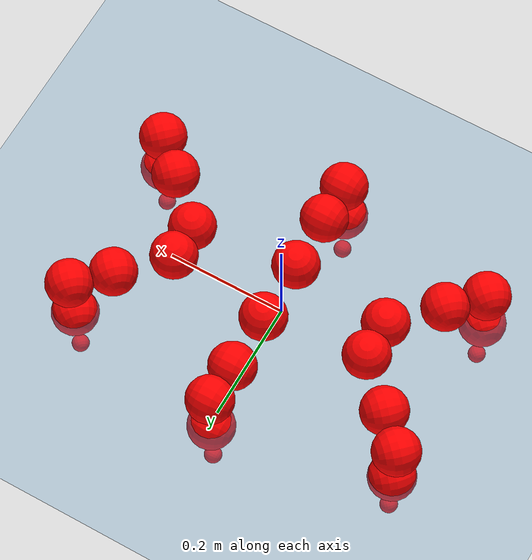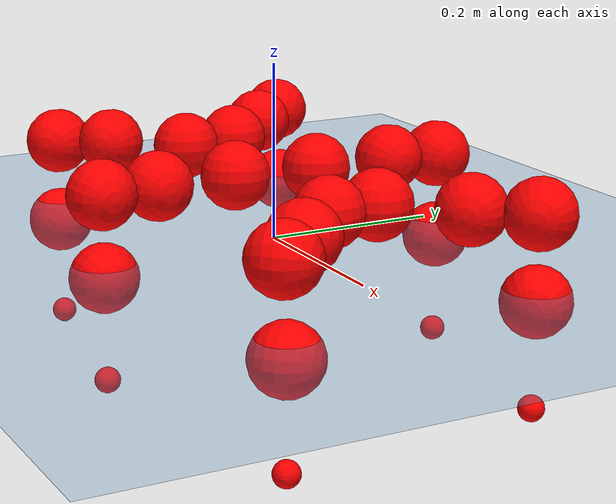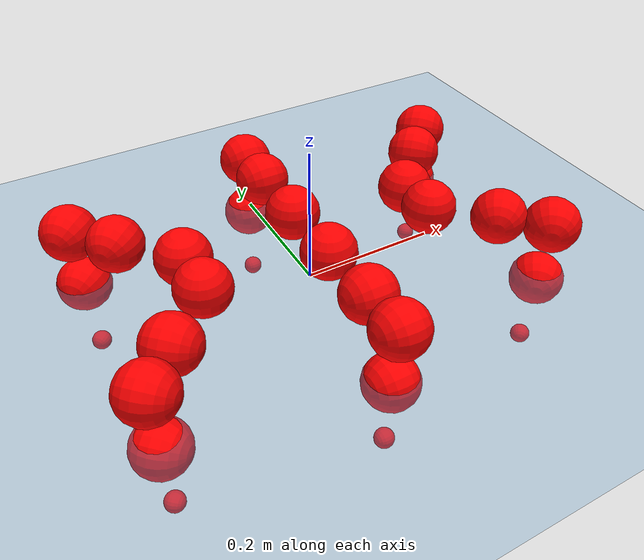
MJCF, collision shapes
<mujoco model="Golem">
  <compiler angle="radian" assetdir="assets" balanceinertia="true" inertiafromgeom="false"/>

  <option timestep="0.005" density="1.2" viscosity="2e-05"/>

  <size nkey="1"/>

  <visual>
    <quality shadowsize="8192"/>
    <map shadowclip="0.5"/>
  </visual>

  <default>
    <default class="/">
      <joint armature="0.01" damping="0.01" frictionloss="0.01"/>
      <geom contype="0" conaffinity="0" group="1" solref="-1000 -80"/>
      <site size="0.01 0.005 0.005" group="5"/>
      <general forcelimited="true" biastype="affine" gainprm="25" biasprm="0 -25 -0.5"/>
      <default class="visual">
        <geom type="mesh" group="2"/>
      </default>
      <default class="collision">
        <geom group="3"/>
      </default>
      <default class="foot">
        <geom size="0.01 0 0" condim="6" group="4" priority="1" solimp="0.015 1 0.01"/>
      </default>
      <default class="reward_collision_sphere">
        <geom group="5" rgba="1 0 0 1"/>
      </default>
    </default>
  </default>

  <asset>
    <texture type="skybox" colorspace="auto" name="//unnamed_texture_0" builtin="gradient" rgb1="0.95 0.95 0.95" rgb2="0.95 0.95 0.95" width="100" height="600"/>
    <texture type="2d" colorspace="auto" name="texplane" builtin="checker" rgb1="0.345 0.575 0.748" rgb2="0.345 0.575 0.748" markrgb="1 1 1" width="512" height="512"/>
    <material name="MatPlane" class="/" texture="texplane" texuniform="true" texrepeat="2 2" specular="0.9"/>
    <mesh name="body" class="/" file="body.stl" scale="0.001 0.001 0.001"/>
    <mesh name="coxa" class="/" file="coxa.stl" scale="0.001 0.001 0.001"/>
    <mesh name="femur" class="/" file="femur.stl" scale="0.001 0.001 0.001"/>
    <mesh name="tibia" class="/" file="tibia.stl" scale="0.001 0.001 0.001"/>
    <mesh name="tarsus" class="/" file="tarsus.stl" scale="0.001 0.001 0.001"/>
  </asset>

  <worldbody>
    <geom name="floor" class="/" size="100 100 0.125" type="plane" group="0" material="MatPlane"/>
    <light name="toplight_shadow" class="/" pos="0 0 5" dir="0.0990148 0.0990148 -0.990148" type="directional" ambient="0.04 0.04 0.04" diffuse="0.55 0.55 0.55" specular="0.12 0.12 0.12"/>
    <light name="toplight_fill" class="/" pos="0 0 5" dir="0.0990148 0.0990148 -0.990148" type="directional" castshadow="false" ambient="0.04 0.04 0.04" diffuse="0.3 0.3 0.3" specular="0.08 0.08 0.08"/>
    <body name="trunk" pos="0.00276822 -0.000198582 0.00222652" quat="1 0.000183243 -2.68856e-05 0.000439572">
      <inertial pos="-0.00215051 -0.00230608 0.000539398" quat="1 -0.000211311 4.23156e-05 -0.0006927" mass="3.45856" diaginertia="0.0156525 0.00105096 0.0233656"/>
      <joint name="//unnamed_joint_0" type="free"/>
      <geom name="//unnamed_geom_1" class="/" pos="0 0 0.0754776" quat="1 0 0 0" type="mesh" rgba="0.9 0.9 0.9 1" mesh="body"/>
      <site name="imu" class="/" pos="0.138915 -0.00974442 0.114628" size="0.00971754"/>
      <camera name="track" class="/" pos="0 -1.27532 0" quat="0.707107 0.707107 0 0" mode="trackcom"/>
      <camera name="ego_camera" class="/" pos="0.142774 0 0.117934" quat="-0.5 -0.5 0.5 0.5"/>
      <body name="coxa_RR" pos="-0.193697 -0.0544397 0.0743799" quat="0.382697 8.78794e-05 4.10811e-05 -0.923874">
        <inertial pos="-0.000144785 0.00127042 -0.000738462" quat="0.99992 0.0113518 -0.00423793 0.00350593" mass="0.187775" diaginertia="0.016361 0.00103017 0.0228189"/>
        <joint name="coxa_joint_RR" class="/" pos="0 0 0" axis="0.000262953 0.000136675 -1" stiffness="0.00383305" range="-3.11417 3.14833" armature="0.00977195" damping="0.0149112" frictionloss="0.00908736"/>
        <geom name="//unnamed_geom_2" class="/" type="mesh" rgba="0.2 0.2 0.2 1" mesh="coxa"/>
        <geom name="//unnamed_geom_3" class="reward_collision_sphere" size="0.0388701" pos="-0.0329479 0 0"/>
        <body name="femur_RR" pos="0.0636871 0.0018073 -0.000956955" quat="0.500013 -0.499969 0.499966 0.500052">
          <inertial pos="-0.00121663 0.00133821 -0.0021143" quat="0.999999 0.000225601 0.000288879 0.00139767" mass="0.183667" diaginertia="0.0159803 0.00105043 0.022768"/>
          <joint name="femur_joint_RR" class="/" pos="0 0 0" axis="0.00188066 -0.00097516 -0.999998" range="-3.17728 3.18565" armature="0.00887839" damping="0.00502967" frictionloss="0.00957784"/>
          <geom name="//unnamed_geom_4" class="/" type="mesh" rgba="0.9 0.9 0.9 1" mesh="femur"/>
          <geom name="//unnamed_geom_5" class="reward_collision_sphere" size="0.0388701"/>
          <body name="tibia_RR" pos="0.00357266 -0.068426 0.00247528" quat="-0.00013116 1 -0.000269635 -0.000281482">
            <inertial pos="0.00245461 -0.00118863 0.00207531" quat="0.999927 0.00594297 0.0104605 -0.00106997" mass="0.186547" diaginertia="0.0166733 0.0011017 0.0230593"/>
            <joint name="tibia_joint_RR" class="/" pos="0 0 0" axis="0.00288864 0.00769616 0.999966" range="-3.1924 3.18285" armature="0.0087772" damping="0.0173522" frictionloss="0.0104101"/>
            <geom name="//unnamed_geom_6" class="/" type="mesh" rgba="0.2 0.2 0.2 1" mesh="tibia"/>
            <geom name="//unnamed_geom_7" class="reward_collision_sphere" size="0.0388701"/>
            <body name="tarsus_RR" pos="0.0995726 0.000149094 -0.00087861" quat="1 -0.000241227 -1.47315e-05 -2.5885e-05">
              <inertial pos="0.0678157 -0.00196212 -0.000655823" quat="0.510927 0.498949 0.493992 0.495958" mass="0.179265" diaginertia="0.0154422 0.00105735 0.0228077"/>
              <joint name="tarsus_joint_RR" class="/" pos="0 0 0" axis="0.00308313 -0.00267052 0.999992" range="-3.16014 3.12908" armature="0.0110698" damping="0.0411539" frictionloss="0.0109472"/>
              <geom name="//unnamed_geom_8" class="/" type="mesh" rgba="0.9 0.9 0.9 1" mesh="tarsus"/>
              <geom name="foot_1" class="foot" size="0.0105593" pos="0.123005 0 0" quat="0 -0.707107 0 0.707107"/>
              <geom name="//unnamed_geom_10" class="reward_collision_sphere" size="0.0388701"/>
              <geom name="//unnamed_geom_11" class="reward_collision_sphere" size="0.0145763" pos="0.118063 0 0"/>
              <site name="foot_1" class="foot" pos="0.123005 0 0" quat="0 -0.707107 0 0.707107" size="0.00971754"/>
            </body>
          </body>
        </body>
      </body>
      <body name="coxa_RM" pos="-0.00149635 -0.0816882 0.0769634" quat="0.707189 0.000178068 9.76064e-06 -0.707024">
        <inertial pos="-0.00062846 0.00278867 0.00302637" quat="0.999992 -0.000961605 0.00124116 0.00364286" mass="0.184614" diaginertia="0.0164754 0.00109547 0.0234399"/>
        <joint name="coxa_joint_RM" class="/" pos="0 0 0" axis="0.000251407 0.0101323 -0.999949" stiffness="0.0069209" range="-3.17933 3.08668" armature="0.0102289" damping="0.031058" frictionloss="0.010599"/>
        <geom name="//unnamed_geom_12" class="/" type="mesh" rgba="0.2 0.2 0.2 1" mesh="coxa"/>
        <geom name="//unnamed_geom_13" class="reward_collision_sphere" size="0.0388701" pos="-0.0329479 0 0"/>
        <body name="femur_RM" pos="0.0605829 0.00166749 -0.000551036" quat="0.499719 -0.500302 0.500455 0.499522">
          <inertial pos="0.000741576 -0.00263151 0.00120117" quat="0.999934 -0.0106419 -0.000138305 -0.00441682" mass="0.181866" diaginertia="0.0159136 0.00101087 0.0227707"/>
          <joint name="femur_joint_RM" class="/" pos="0 0 0" axis="0.00916209 0.00785226 -0.999927" range="-3.09291 3.08863" armature="0.00936114" damping="0.00383448" frictionloss="0.0100511"/>
          <geom name="//unnamed_geom_14" class="/" type="mesh" rgba="0.9 0.9 0.9 1" mesh="femur"/>
          <geom name="//unnamed_geom_15" class="reward_collision_sphere" size="0.0388701"/>
          <body name="tibia_RM" pos="0.00173383 -0.0659082 0.000639174" quat="0.000185148 1 -0.000169994 -4.87869e-05">
            <inertial pos="0.00124522 0.000375689 0.00290499" quat="0.999977 0.0053827 -0.00329489 0.00255959" mass="0.181129" diaginertia="0.016106 0.00105134 0.0230993"/>
            <joint name="tibia_joint_RM" class="/" pos="0 0 0" axis="-0.00091495 -0.00264456 0.999996" range="-3.14869 3.19227" armature="0.0110358" damping="0.00454625" frictionloss="0.010832"/>
            <geom name="//unnamed_geom_16" class="/" type="mesh" rgba="0.2 0.2 0.2 1" mesh="tibia"/>
            <geom name="//unnamed_geom_17" class="reward_collision_sphere" size="0.0388701"/>
            <body name="tarsus_RM" pos="0.0937604 -0.00136519 0.00307273" quat="0.999999 -0.000311087 -0.000579662 -0.000950101">
              <inertial pos="0.0663229 0.00128614 -0.00126651" quat="0.500059 0.500702 0.501266 0.497967" mass="0.187442" diaginertia="0.0169222 0.00105705 0.0232448"/>
              <joint name="tarsus_joint_RM" class="/" pos="0 0 0" axis="-0.000637352 0.00961253 0.999954" range="-3.14068 3.15641" armature="0.00984711" damping="0.00806706" frictionloss="0.0100894"/>
              <geom name="//unnamed_geom_18" class="/" type="mesh" rgba="0.9 0.9 0.9 1" mesh="tarsus"/>
              <geom name="foot_2" class="foot" size="0.00936829" pos="0.123005 0 0" quat="0 -0.707107 0 0.707107"/>
              <geom name="//unnamed_geom_20" class="reward_collision_sphere" size="0.0388701"/>
              <geom name="//unnamed_geom_21" class="reward_collision_sphere" size="0.0145763" pos="0.118063 0 0"/>
              <site name="foot_2" class="foot" pos="0.123005 0 0" quat="0 -0.707107 0 0.707107" size="0.00971754"/>
            </body>
          </body>
        </body>
      </body>
      <body name="coxa_RF" pos="0.197261 -0.0516635 0.0743546" quat="0.923988 0.000305492 0.000204001 -0.382422">
        <inertial pos="0.000476807 0.00058912 0.000604709" quat="0.999985 0.00535386 0.000940276 -5.35057e-05" mass="0.185377" diaginertia="0.0157722 0.00107916 0.0227695"/>
        <joint name="coxa_joint_RF" class="/" pos="0 0 0" axis="0.000348441 0.000490071 -1" range="-3.18165 3.12106" armature="0.00833571" damping="0.0224556" frictionloss="0.00955468"/>
        <geom name="//unnamed_geom_22" class="/" type="mesh" rgba="0.2 0.2 0.2 1" mesh="coxa"/>
        <geom name="//unnamed_geom_23" class="reward_collision_sphere" size="0.0388701" pos="-0.0329479 0 0"/>
        <body name="femur_RF" pos="0.0642755 0.00216103 0.00133013" quat="0.500061 -0.499937 0.500106 0.499896">
          <inertial pos="5.57797e-05 -0.00218891 -0.0010079" quat="0.999918 0.00930853 -0.00469765 -0.00739291" mass="0.177448" diaginertia="0.0152363 0.00101728 0.0230914"/>
          <joint name="femur_joint_RF" class="/" pos="0 0 0" axis="0.00157724 -0.00342889 -0.999993" range="-3.13399 3.15465" armature="0.0104843" damping="0.00026325" frictionloss="0.0110601"/>
          <geom name="//unnamed_geom_24" class="/" type="mesh" rgba="0.9 0.9 0.9 1" mesh="femur"/>
          <geom name="//unnamed_geom_25" class="reward_collision_sphere" size="0.0388701"/>
          <body name="tibia_RF" pos="0.00113982 -0.0721795 0.00197714" quat="3.20157e-05 1 -4.67508e-05 2.7928e-05">
            <inertial pos="0.00261993 0.00204682 -0.00115381" quat="0.999917 0.0128262 -0.000623563 0.000978662" mass="0.182497" diaginertia="0.0154876 0.00101692 0.0229401"/>
            <joint name="tibia_joint_RF" class="/" pos="0 0 0" axis="-0.00126744 -0.00304283 0.999995" range="-3.12836 3.09594" armature="0.0109157" damping="0" frictionloss="0.00929335"/>
            <geom name="//unnamed_geom_26" class="/" type="mesh" rgba="0.2 0.2 0.2 1" mesh="tibia"/>
            <geom name="//unnamed_geom_27" class="reward_collision_sphere" size="0.0388701"/>
            <body name="tarsus_RF" pos="0.0994471 -0.000620475 -0.0024763" quat="1 -0.000102293 9.60094e-05 -0.000356228">
              <inertial pos="0.067523 0.000977502 -0.00218306" quat="0.50519 0.494189 0.503738 0.496798" mass="0.181956" diaginertia="0.0159459 0.0010795 0.0230058"/>
              <joint name="tarsus_joint_RF" class="/" pos="0 0 0" axis="-0.00364031 0.00309249 0.999989" stiffness="0.0169884" range="-3.15595 3.126" armature="0.00859036" damping="0.00981783" frictionloss="0.00956354"/>
              <geom name="//unnamed_geom_28" class="/" type="mesh" rgba="0.9 0.9 0.9 1" mesh="tarsus"/>
              <geom name="foot_3" class="foot" size="0.00870776" pos="0.123005 0 0" quat="0 -0.707107 0 0.707107"/>
              <geom name="//unnamed_geom_30" class="reward_collision_sphere" size="0.0388701"/>
              <geom name="//unnamed_geom_31" class="reward_collision_sphere" size="0.0145763" pos="0.118063 0 0"/>
              <site name="foot_3" class="foot" pos="0.123005 0 0" quat="0 -0.707107 0 0.707107" size="0.00971754"/>
            </body>
          </body>
        </body>
      </body>
      <body name="coxa_LR" pos="-0.194771 0.0553537 0.0776013" quat="0.383218 0.000923557 -0.000751661 0.923657">
        <inertial pos="-0.00248376 0.00123526 0.00381237" quat="0.999989 -0.00360641 0.002898 -0.000849032" mass="0.188144" diaginertia="0.0165035 0.00106076 0.022898"/>
        <joint name="coxa_joint_LR" class="/" pos="0 0 0" axis="0.00797499 0.0115642 -0.999901" range="-3.19153 3.12045" armature="0.00987211" damping="0.0196943" frictionloss="0.00903842"/>
        <geom name="//unnamed_geom_32" class="/" type="mesh" rgba="0.2 0.2 0.2 1" mesh="coxa"/>
        <geom name="//unnamed_geom_33" class="reward_collision_sphere" size="0.0388701" pos="-0.0329479 0 0"/>
        <body name="femur_LR" pos="0.0638538 -0.000355887 0.000316733" quat="0.49938 -0.499983 0.500512 0.500124">
          <inertial pos="0.00279866 -0.000537442 0.00214581" quat="0.999991 0.000841375 -0.00410105 -0.000604731" mass="0.175073" diaginertia="0.0156366 0.00103772 0.0218334"/>
          <joint name="femur_joint_LR" class="/" pos="0 0 0" axis="-0.0139313 -0.000686212 0.999903" range="-3.17461 3.1201" armature="0.0107173" damping="0.00257377" frictionloss="0.00932199"/>
          <geom name="//unnamed_geom_34" class="/" type="mesh" rgba="0.9 0.9 0.9 1" mesh="femur"/>
          <geom name="//unnamed_geom_35" class="reward_collision_sphere" size="0.0388701"/>
          <body name="tibia_LR" pos="-0.00144411 -0.0696788 -0.0019377" quat="-1.97889e-05 0.999999 0.00128111 9.85352e-05">
            <inertial pos="-0.000518327 0.00134194 0.00148779" quat="0.999937 -0.000236168 -0.0091115 0.00659149" mass="0.182056" diaginertia="0.0161636 0.00107747 0.0226158"/>
            <joint name="tibia_joint_LR" class="/" pos="0 0 0" axis="0.00443005 0.00220388 -0.999988" range="-3.15799 3.18507" armature="0.00870792" damping="0.0279358" frictionloss="0.0107422"/>
            <geom name="//unnamed_geom_36" class="/" type="mesh" rgba="0.2 0.2 0.2 1" mesh="tibia"/>
            <geom name="//unnamed_geom_37" class="reward_collision_sphere" size="0.0388701"/>
            <body name="tarsus_LR" pos="0.093887 0.0018416 0.00325654" quat="1 -9.04956e-05 -0.000123917 -1.06532e-05">
              <inertial pos="0.0650267 -0.000274909 -0.000462229" quat="0.500342 0.504776 0.502864 0.491921" mass="0.185103" diaginertia="0.0168621 0.00109822 0.0241872"/>
              <joint name="tarsus_joint_LR" class="/" pos="0 0 0" axis="0.000331098 -0.0022844 -0.999997" stiffness="0.0055101" range="-3.14279 3.12486" armature="0.00958451" damping="0.035856" frictionloss="0.00978026"/>
              <geom name="//unnamed_geom_38" class="/" type="mesh" rgba="0.9 0.9 0.9 1" mesh="tarsus"/>
              <geom name="foot_4" class="foot" size="0.00951194" pos="0.123005 0 0" quat="0.707107 0 -0.707107 0"/>
              <geom name="//unnamed_geom_40" class="reward_collision_sphere" size="0.0388701"/>
              <geom name="//unnamed_geom_41" class="reward_collision_sphere" size="0.0145763" pos="0.118063 0 0"/>
              <site name="foot_4" class="foot" pos="0.123005 0 0" quat="0.707107 0 -0.707107 0" size="0.00971754"/>
            </body>
          </body>
        </body>
      </body>
      <body name="coxa_LM" pos="-0.00105428 0.085999 0.074713" quat="0.707438 0.000995357 0.000306932 0.706774">
        <inertial pos="-0.000140355 -0.00264457 -0.00122197" quat="1 0.000491799 -0.000341599 -0.00035705" mass="0.186297" diaginertia="0.0159732 0.00107397 0.0228428"/>
        <joint name="coxa_joint_LM" class="/" pos="0 0 0" axis="0.00125723 0.0043741 -0.99999" range="-3.13977 3.14205" armature="0.00936996" damping="0.0169349" frictionloss="0.0087586"/>
        <geom name="//unnamed_geom_42" class="/" type="mesh" rgba="0.2 0.2 0.2 1" mesh="coxa"/>
        <geom name="//unnamed_geom_43" class="reward_collision_sphere" size="0.0388701" pos="-0.0329479 0 0"/>
        <body name="femur_LM" pos="0.0633346 0.000629909 0.000298388" quat="0.499839 -0.500106 0.500217 0.499838">
          <inertial pos="0.00116188 0.0023816 -0.000238363" quat="0.999988 -0.0030982 -0.00199815 -0.00316256" mass="0.183865" diaginertia="0.0165081 0.00105295 0.0220135"/>
          <joint name="femur_joint_LM" class="/" pos="0 0 0" axis="-0.0115907 0.00024616 0.999933" stiffness="0.000858042" range="-3.1207 3.1164" armature="0.0111697" damping="0" frictionloss="0.0105998"/>
          <geom name="//unnamed_geom_44" class="/" type="mesh" rgba="0.9 0.9 0.9 1" mesh="femur"/>
          <geom name="//unnamed_geom_45" class="reward_collision_sphere" size="0.0388701"/>
          <body name="tibia_LM" pos="0.00154207 -0.0647718 -0.0021926" quat="9.63067e-06 1 -3.08296e-05 2.35436e-05">
            <inertial pos="-0.00203886 0.000777407 -0.00172084" quat="0.999956 0.00896417 -0.00114408 0.00234012" mass="0.187479" diaginertia="0.0157364 0.00107338 0.0226516"/>
            <joint name="tibia_joint_LM" class="/" pos="0 0 0" axis="-0.00298956 -0.00457673 -0.999985" stiffness="0.00796658" range="-3.12431 3.14204" armature="0.0110604" damping="0.00659104" frictionloss="0.00983233"/>
            <geom name="//unnamed_geom_46" class="/" type="mesh" rgba="0.2 0.2 0.2 1" mesh="tibia"/>
            <geom name="//unnamed_geom_47" class="reward_collision_sphere" size="0.0388701"/>
            <body name="tarsus_LM" pos="0.099163 0.000956492 -0.000277447" quat="0.999999 0.0010985 -0.000612846 -0.000272258">
              <inertial pos="0.0628503 -0.00114742 -0.000541471" quat="0.500302 0.503073 0.500836 0.495761" mass="0.178897" diaginertia="0.0152336 0.00100939 0.0216"/>
              <joint name="tarsus_joint_LM" class="/" pos="0 0 0" axis="0.00017874 0.000196369 -1" stiffness="0.0133633" range="-3.12821 3.1381" armature="0.00835636" damping="0.029613" frictionloss="0.00985464"/>
              <geom name="//unnamed_geom_48" class="/" type="mesh" rgba="0.9 0.9 0.9 1" mesh="tarsus"/>
              <geom name="foot_5" class="foot" size="0.00947272" pos="0.123005 0 0" quat="0.707107 0 -0.707107 0"/>
              <geom name="//unnamed_geom_50" class="reward_collision_sphere" size="0.0388701"/>
              <geom name="//unnamed_geom_51" class="reward_collision_sphere" size="0.0145763" pos="0.118063 0 0"/>
              <site name="foot_5" class="foot" pos="0.123005 0 0" quat="0.707107 0 -0.707107 0" size="0.00971754"/>
            </body>
          </body>
        </body>
      </body>
      <body name="coxa_LF" pos="0.196353 0.0531738 0.07514" quat="0.923902 -0.00021334 -8.74656e-05 0.382628">
        <inertial pos="0.002832 -0.00219013 0.00254165" quat="0.999958 0.00369834 0.0052364 0.00653364" mass="0.18448" diaginertia="0.0157209 0.00106549 0.0236495"/>
        <joint name="coxa_joint_LF" class="/" pos="0 0 0" axis="0.0130587 0.0166598 -0.999776" stiffness="0.0192712" range="-3.14066 3.13454" armature="0.00952104" damping="0.00819043" frictionloss="0.0105374"/>
        <geom name="//unnamed_geom_52" class="/" type="mesh" rgba="0.2 0.2 0.2 1" mesh="coxa"/>
        <geom name="//unnamed_geom_53" class="reward_collision_sphere" size="0.0388701" pos="-0.0329479 0 0"/>
        <body name="femur_LF" pos="0.0653322 0.00394848 0.0017546" quat="0.500138 -0.499402 0.500365 0.500094">
          <inertial pos="0.000125399 -0.00309397 -0.000903375" quat="0.999906 -0.00131058 0.0059377 0.0122499" mass="0.178747" diaginertia="0.0161176 0.00105802 0.0235476"/>
          <joint name="femur_joint_LF" class="/" pos="0 0 0" axis="-0.00921112 0.000154679 0.999958" range="-3.13494 3.09929" armature="0.0106108" damping="0.017133" frictionloss="0.00945664"/>
          <geom name="//unnamed_geom_54" class="/" type="mesh" rgba="0.9 0.9 0.9 1" mesh="femur"/>
          <geom name="//unnamed_geom_55" class="reward_collision_sphere" size="0.0388701"/>
          <body name="tibia_LF" pos="-0.000965926 -0.0707586 0.00144929" quat="-0.000652122 1 8.54188e-05 0.000709307">
            <inertial pos="-0.00136811 0.00281842 0.000575543" quat="0.999988 0.00287234 0.00322022 0.00225214" mass="0.183904" diaginertia="0.0160565 0.00104033 0.0228599"/>
            <joint name="tibia_joint_LF" class="/" pos="0 0 0" axis="0.00156046 -0.00295193 -0.999994" stiffness="0.00390743" range="-3.19471 3.17316" armature="0.0100267" damping="0.00461158" frictionloss="0.0109992"/>
            <geom name="//unnamed_geom_56" class="/" type="mesh" rgba="0.2 0.2 0.2 1" mesh="tibia"/>
            <geom name="//unnamed_geom_57" class="reward_collision_sphere" size="0.0388701"/>
            <body name="tarsus_LF" pos="0.0952744 -0.00118895 -0.00433208" quat="0.999999 4.85922e-05 -0.00148633 -0.000100296">
              <inertial pos="0.0652218 0.00346519 0.000747401" quat="0.500066 0.500032 0.499992 0.49991" mass="0.177626" diaginertia="0.0151197 0.00100072 0.0221726"/>
              <joint name="tarsus_joint_LF" class="/" pos="0 0 0" axis="0.0157944 -0.00175902 -0.999874" stiffness="0.0265254" range="-3.13023 3.12285" armature="0.00976268" damping="0.00711836" frictionloss="0.00988004"/>
              <geom name="//unnamed_geom_58" class="/" type="mesh" rgba="0.9 0.9 0.9 1" mesh="tarsus"/>
              <geom name="foot_6" class="foot" size="0.00964138" pos="0.123005 0 0" quat="0.707107 0 -0.707107 0"/>
              <geom name="//unnamed_geom_60" class="reward_collision_sphere" size="0.0388701"/>
              <geom name="//unnamed_geom_61" class="reward_collision_sphere" size="0.0145763" pos="0.118063 0 0"/>
              <site name="foot_6" class="foot" pos="0.123005 0 0" quat="0.707107 0 -0.707107 0" size="0.00971754"/>
            </body>
          </body>
        </body>
      </body>
    </body>
  </worldbody>

  <contact>
    <pair class="/" geom1="floor" geom2="foot_1" name="//unnamed_contact_0"/>
    <pair class="/" geom1="floor" geom2="foot_2" name="//unnamed_contact_1"/>
    <pair class="/" geom1="floor" geom2="foot_3" name="//unnamed_contact_2"/>
    <pair class="/" geom1="floor" geom2="foot_4" name="//unnamed_contact_3"/>
    <pair class="/" geom1="floor" geom2="foot_5" name="//unnamed_contact_4"/>
    <pair class="/" geom1="floor" geom2="foot_6" name="//unnamed_contact_5"/>
  </contact>

  <actuator>
    <general name="coxa_joint_RR" class="/" joint="coxa_joint_RR" forcerange="-7.82827 7.82827" gainprm="23.5551" biasprm="0 -23.5551 -0.503939"/>
    <general name="femur_joint_RR" class="/" joint="femur_joint_RR" forcerange="-6.41091 6.41091" gainprm="23.5551" biasprm="0 -23.5551 -0.503939"/>
    <general name="tibia_joint_RR" class="/" joint="tibia_joint_RR" forcerange="-7.39831 7.39831" gainprm="23.5551" biasprm="0 -23.5551 -0.503939"/>
    <general name="tarsus_joint_RR" class="/" joint="tarsus_joint_RR" forcerange="-6.56373 6.56373" gainprm="23.5551" biasprm="0 -23.5551 -0.503939"/>
    <general name="coxa_joint_RM" class="/" joint="coxa_joint_RM" forcerange="-7.04748 7.04748" gainprm="23.5551" biasprm="0 -23.5551 -0.503939"/>
    <general name="femur_joint_RM" class="/" joint="femur_joint_RM" forcerange="-6.94964 6.94964" gainprm="23.5551" biasprm="0 -23.5551 -0.503939"/>
    <general name="tibia_joint_RM" class="/" joint="tibia_joint_RM" forcerange="-7.58695 7.58695" gainprm="23.5551" biasprm="0 -23.5551 -0.503939"/>
    <general name="tarsus_joint_RM" class="/" joint="tarsus_joint_RM" forcerange="-6.40766 6.40766" gainprm="23.5551" biasprm="0 -23.5551 -0.503939"/>
    <general name="coxa_joint_RF" class="/" joint="coxa_joint_RF" forcerange="-7.2001 7.2001" gainprm="23.5551" biasprm="0 -23.5551 -0.503939"/>
    <general name="femur_joint_RF" class="/" joint="femur_joint_RF" forcerange="-6.59842 6.59842" gainprm="23.5551" biasprm="0 -23.5551 -0.503939"/>
    <general name="tibia_joint_RF" class="/" joint="tibia_joint_RF" forcerange="-7.7796 7.7796" gainprm="23.5551" biasprm="0 -23.5551 -0.503939"/>
    <general name="tarsus_joint_RF" class="/" joint="tarsus_joint_RF" forcerange="-6.6185 6.6185" gainprm="23.5551" biasprm="0 -23.5551 -0.503939"/>
    <general name="coxa_joint_LR" class="/" joint="coxa_joint_LR" forcerange="-6.9436 6.9436" gainprm="23.5551" biasprm="0 -23.5551 -0.503939"/>
    <general name="femur_joint_LR" class="/" joint="femur_joint_LR" forcerange="-7.8318 7.8318" gainprm="23.5551" biasprm="0 -23.5551 -0.503939"/>
    <general name="tibia_joint_LR" class="/" joint="tibia_joint_LR" forcerange="-7.6976 7.6976" gainprm="23.5551" biasprm="0 -23.5551 -0.503939"/>
    <general name="tarsus_joint_LR" class="/" joint="tarsus_joint_LR" forcerange="-7.28709 7.28709" gainprm="23.5551" biasprm="0 -23.5551 -0.503939"/>
    <general name="coxa_joint_LM" class="/" joint="coxa_joint_LM" forcerange="-7.80042 7.80042" gainprm="23.5551" biasprm="0 -23.5551 -0.503939"/>
    <general name="femur_joint_LM" class="/" joint="femur_joint_LM" forcerange="-6.96657 6.96657" gainprm="23.5551" biasprm="0 -23.5551 -0.503939"/>
    <general name="tibia_joint_LM" class="/" joint="tibia_joint_LM" forcerange="-7.2661 7.2661" gainprm="23.5551" biasprm="0 -23.5551 -0.503939"/>
    <general name="tarsus_joint_LM" class="/" joint="tarsus_joint_LM" forcerange="-6.66488 6.66488" gainprm="23.5551" biasprm="0 -23.5551 -0.503939"/>
    <general name="coxa_joint_LF" class="/" joint="coxa_joint_LF" forcerange="-7.82212 7.82212" gainprm="23.5551" biasprm="0 -23.5551 -0.503939"/>
    <general name="femur_joint_LF" class="/" joint="femur_joint_LF" forcerange="-7.00807 7.00807" gainprm="23.5551" biasprm="0 -23.5551 -0.503939"/>
    <general name="tibia_joint_LF" class="/" joint="tibia_joint_LF" forcerange="-6.83496 6.83496" gainprm="23.5551" biasprm="0 -23.5551 -0.503939"/>
    <general name="tarsus_joint_LF" class="/" joint="tarsus_joint_LF" forcerange="-7.13802 7.13802" gainprm="23.5551" biasprm="0 -23.5551 -0.503939"/>
  </actuator>

  <sensor>
    <gyro site="imu" name="imu_angular_velocity"/>
    <velocimeter site="imu" name="imu_linear_velocity"/>
    <framelinvel objtype="site" objname="foot_1" name="foot_1_global_linear_velocity"/>
    <framelinvel objtype="site" objname="foot_2" name="foot_2_global_linear_velocity"/>
    <framelinvel objtype="site" objname="foot_3" name="foot_3_global_linear_velocity"/>
    <framelinvel objtype="site" objname="foot_4" name="foot_4_global_linear_velocity"/>
    <framelinvel objtype="site" objname="foot_5" name="foot_5_global_linear_velocity"/>
    <framelinvel objtype="site" objname="foot_6" name="foot_6_global_linear_velocity"/>
  </sensor>

  <keyframe>
    <key name="home" qpos="0 0 0.1457 1 0 0 0 0 0 0 0 0 0 0 0 0 0 0 0 0 0 0 0 0 0 0 0 0 0 0 0"/>
  </keyframe>
</mujoco>
